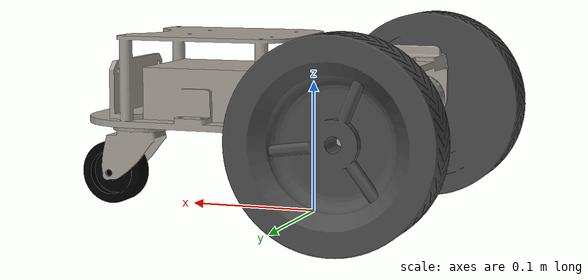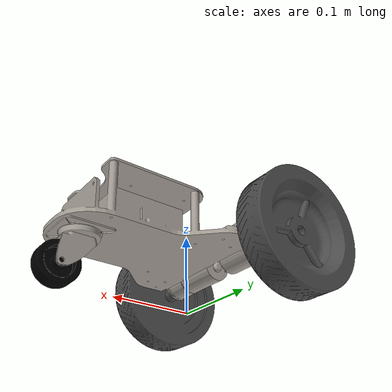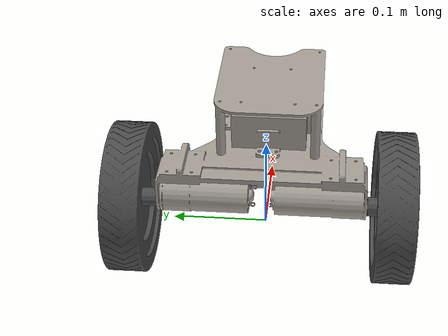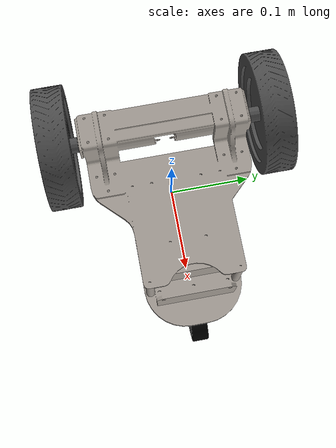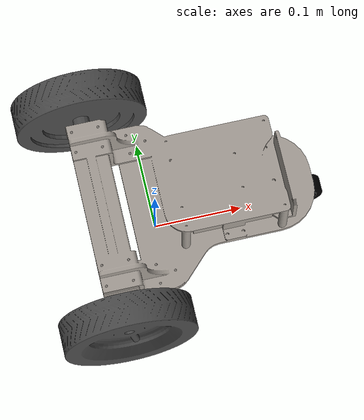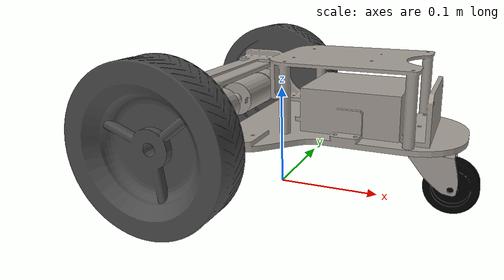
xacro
<?xml version="1.0"?>
<robot name="mobile_base" xmlns:xacro="http://www.ros.org/wiki/xacro">

    <link name="base_footprint" />

    <link name="base_link">
        <inertial>
            <origin
                xyz="0 0 0"
                rpy="0 0 0" />
            <mass
                value="3.05013833627546" />
            <inertia
                ixx="0.00282873573184269"
                ixy="-1.34642108977171E-07"
                ixz="3.62264183974517E-05"
                iyy="0.00241125343004195"
                iyz="3.17541336190539E-09"
                izz="0.00466072890852247" />
        </inertial>
        <visual>
            <origin
                xyz="0 0 0"
                rpy="0 0 0" />
            <geometry>
                <mesh
                filename="package://krobot_amr_description/meshes/base_link.STL" />
            </geometry>
            <material
                name="">
                <color
                rgba="0.647058823529412 0.619607843137255 0.588235294117647 1" />
            </material>
        </visual>
        <collision>
            <origin
                xyz="0 0 0"
                rpy="0 0 0" />
            <geometry>
                <mesh
                filename="package://krobot_amr_description/meshes/base_link.STL" />
            </geometry>
        </collision>
    </link>

    <joint name="base_joint" type="fixed">
        <parent link="base_footprint" />
        <child link="base_link" />
        <origin xyz="0 0 0.085" rpy="0 0 0"/>
    </joint>

    <link
    name="left_wheel">
        <inertial>
            <origin
                xyz="0 0 0"
                rpy="0 0 0" />
            <mass
                value="0.546060060071944" />
            <inertia
                ixx="0.00100429594588788"
                ixy="1.17828555717233E-07"
                ixz="-2.11659705830806E-09"
                iyy="0.00190734224449798"
                iyz="-8.93928077455667E-08"
                izz="0.00100429480035459" />
        </inertial>
        <visual>
            <origin
                xyz="0 0 0"
                rpy="0 0 0" />
            <geometry>
                <mesh
                filename="package://krobot_amr_description/meshes/left_wheel.STL" />
            </geometry>
            <material
                name="">
                <color
                rgba="0.298039215686275 0.298039215686275 0.298039215686275 1" />
            </material>
        </visual>
        <collision>
            <origin
                xyz="0 0 0"
                rpy="0 0 0" />
            <geometry>
                <mesh
                filename="package://krobot_amr_description/meshes/left_wheel.STL" />
            </geometry>
            <surface>
                <friction>
                    <ode>
                        <mu>0.9</mu>
                        <mu2>0.9</mu2>
                    </ode>
                </friction>
            </surface>
        </collision>
    </link>

    <joint
        name="base_left_wheel"
        type="continuous">
        <origin
        xyz="-0.059227 0.12918 -0.012612"
        rpy="0 0 0" />
        <parent
        link="base_link" />
        <child
        link="left_wheel" />
        <axis
        xyz="0 1 0" />
    </joint>

    <link
    name="right_wheel">
        <inertial>
            <origin
                xyz="0 0 0"
                rpy="0 0 0" />
            <mass
                value="0.546060060071944" />
            <inertia
                ixx="0.0010042948817914"
                ixy="-9.16319059622406E-08"
                ixz="-2.13696975270597E-09"
                iyy="0.00190734224449798"
                iyz="1.16095807112114E-07"
                izz="0.00100429586445108" />
        </inertial>
        <visual>
            <origin
                xyz="0 0 0"
                rpy="0 0 0" />
            <geometry>
                <mesh
                filename="package://krobot_amr_description/meshes/right_wheel.STL" />
            </geometry>
            <material
                name="">
                <color
                rgba="0.298039215686275 0.298039215686275 0.298039215686275 1" />
            </material>
        </visual>
        <collision>
            <origin
                xyz="0 0 0"
                rpy="0 0 0" />
            <geometry>
                <mesh
                filename="package://krobot_amr_description/meshes/right_wheel.STL" />
            </geometry>
            <surface>
                <friction>
                    <ode>
                        <mu>0.9</mu>
                        <mu2>0.9</mu2>
                    </ode>
                </friction>
            </surface>
        </collision>
    </link>
    <joint
        name="base_right_wheel"
        type="continuous">
        <origin
        xyz="-0.059232 -0.12918 -0.012617"
        rpy="0 0 0" />
        <parent
        link="base_link" />
        <child
        link="right_wheel" />
        <axis
        xyz="0 1 0" />
    </joint>

    <link
    name="caster">
        <inertial>
            <origin
                xyz="0 0 0"
                rpy="0 0 0" />
            <mass
                value="0.117454061907181" />
            <inertia
                ixx="2.84085593987581E-05"
                ixy="1.35010445332139E-07"
                ixz="6.7322693299636E-06"
                iyy="3.15485424415511E-05"
                iyz="-2.85056167574158E-07"
                izz="3.33738274419381E-05" />
            </inertial>
        <visual>
            <origin
                xyz="0 0 0"
                rpy="0 0 0" />
            <geometry>
                <mesh
                filename="package://krobot_amr_description/meshes/caster.STL" />
            </geometry>
            <material
                name="">
                <color
                rgba="0.647058823529412 0.619607843137255 0.588235294117647 1" />
            </material>
        </visual>
        <collision>
            <origin
                xyz="0 0 0"
                rpy="0 0 0" />
            <geometry>
                <mesh
                filename="package://krobot_amr_description/meshes/caster.STL" />
            </geometry>

        </collision>
    </link>
    <joint
        name="base_caster"
        type="continuous">
        <origin
        xyz="0.1481 -0.00012115 -0.031621"
        rpy="0 0 0" />
        <parent
        link="base_link" />
        <child
        link="caster" />
        <axis
        xyz="0 0 -1" />
    </joint>
    <link
        name="caster_wheel">
        <inertial>
            <origin
                xyz="0 0 0"
                rpy="0 0 0" />
            <mass
                value="0.0267501738812479" />
            <inertia
                ixx="5.65844186423342E-06"
                ixy="-1.44278691817399E-21"
                ixz="-5.62772440327498E-22"
                iyy="9.87141726802175E-06"
                iyz="6.72959251701015E-22"
                izz="5.65844186423342E-06" />
        </inertial>
        <visual>
            <origin
                xyz="0 0 0"
                rpy="0 0 0" />
            <geometry>
                <mesh
                filename="package://krobot_amr_description/meshes/caster_wheel.STL" />
            </geometry>
            <material
                name="">
                <color
                rgba="0 0 0 1" />
            </material>
        </visual>
        <collision>
            <origin
                xyz="0 0 0"
                rpy="0 0 0" />
            <geometry>
                <mesh
                filename="package://krobot_amr_description/meshes/caster_wheel.STL" />
            </geometry>
            <surface>
                <friction>
                    <ode>
                        <mu>0.9</mu>
                        <mu2>0.9</mu2>
                    </ode>
                </friction>
            </surface>
        </collision>
    </link>
    <joint
        name="caster_caster_wheel"
        type="continuous">
        <origin
        xyz="0.020268 -0.00033344 -0.030926"
        rpy="0 0 0" />
        <parent
        link="caster" />
        <child
        link="caster_wheel" />
        <axis
        xyz="0 1 0" />
    </joint>

</robot>
